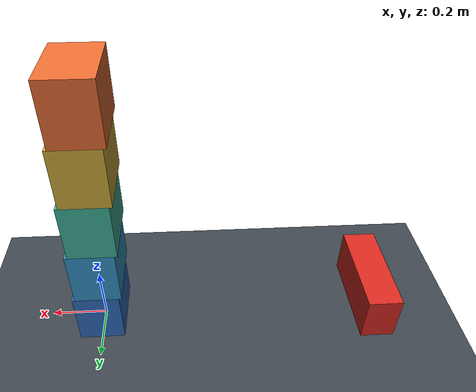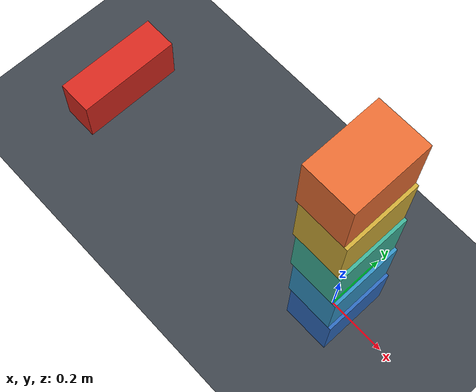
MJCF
<mujoco model="five_block_stack">
  <compiler angle="radian" autolimits="true"/>
  <option timestep="0.002" gravity="0 0 -9.81" integrator="implicitfast" solver="Newton" iterations="100" cone="elliptic"/>

  <visual>
    <headlight ambient="0.35 0.35 0.35" diffuse="0.7 0.7 0.7" specular="0.2 0.2 0.2"/>
  </visual>

  <worldbody>
    <light name="main_light" pos="-2 -3 5" dir="0.3 0.4 -1" directional="true"/>
    <camera name="overview" pos="2.6 -4.2 2.4" xyaxes="0.850 0.526 0 -0.230 0.372 0.899"/>
    <geom name="floor" type="plane" size="5 5 0.1" friction="0.65 0.005 0.0001" solref="0.01 1" rgba="0.24 0.27 0.30 1"/>

    <!-- The motor accelerates this low pusher toward block1, then holds it at its travel limit. -->
    <body name="pusher" pos="-1 0 0.10">
      <joint name="pusher_slide" type="slide" axis="1 0 0" limited="true" range="0 1.8" damping="30" solreflimit="0.01 1"/>
      <geom name="pusher_geom" type="box" size="0.06 0.18 0.085" mass="8" friction="0.65 0.005 0.0001" solref="0.01 1" rgba="0.85 0.16 0.12 1"/>
    </body>

    <!-- Each initial overhang is small enough to leave the stack statically supported. -->
    <body name="block1" pos="0 0 0.10">
      <freejoint name="block1_free"/>
      <geom name="block1_geom" type="box" size="0.08 0.12 0.10" mass="0.7" friction="0.65 0.005 0.0001" solref="0.01 1" rgba="0.18 0.42 0.75 1"/>
    </body>

    <body name="block2" pos="-0.01 0 0.30">
      <freejoint name="block2_free"/>
      <geom name="block2_geom" type="box" size="0.08 0.12 0.10" mass="0.7" friction="0.65 0.005 0.0001" solref="0.01 1" rgba="0.20 0.58 0.78 1"/>
    </body>

    <body name="block3" pos="-0.02 0 0.50">
      <freejoint name="block3_free"/>
      <geom name="block3_geom" type="box" size="0.08 0.12 0.10" mass="0.7" friction="0.65 0.005 0.0001" solref="0.01 1" rgba="0.24 0.70 0.60 1"/>
    </body>

    <body name="block4" pos="-0.03 0 0.70">
      <freejoint name="block4_free"/>
      <geom name="block4_geom" type="box" size="0.08 0.12 0.10" mass="0.7" friction="0.65 0.005 0.0001" solref="0.01 1" rgba="0.82 0.68 0.22 1"/>
    </body>

    <body name="block5" pos="-0.04 0 0.90">
      <freejoint name="block5_free"/>
      <geom name="block5_geom" type="box" size="0.08 0.12 0.10" mass="0.7" friction="0.65 0.005 0.0001" solref="0.01 1" rgba="0.92 0.43 0.20 1"/>
    </body>
  </worldbody>

  <actuator>
    <motor name="pusher_motor" joint="pusher_slide" gear="1" ctrllimited="true" ctrlrange="0 100"/>
  </actuator>

  <keyframe>
    <key name="start" ctrl="100"/>
  </keyframe>
</mujoco>
